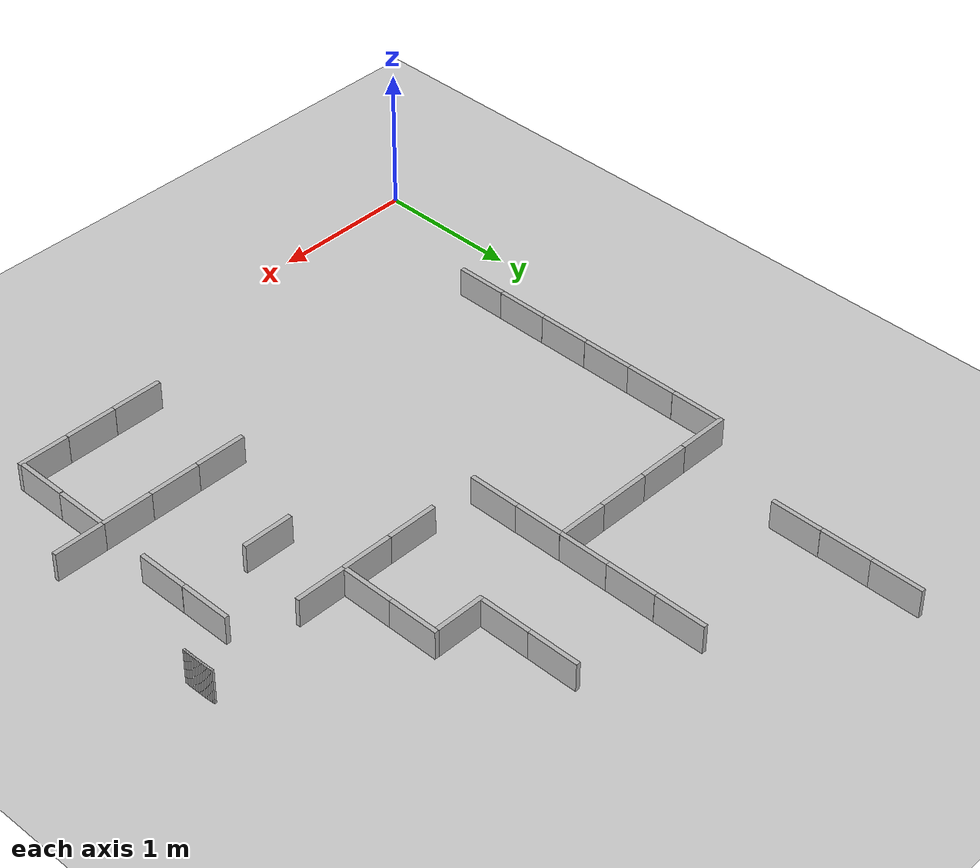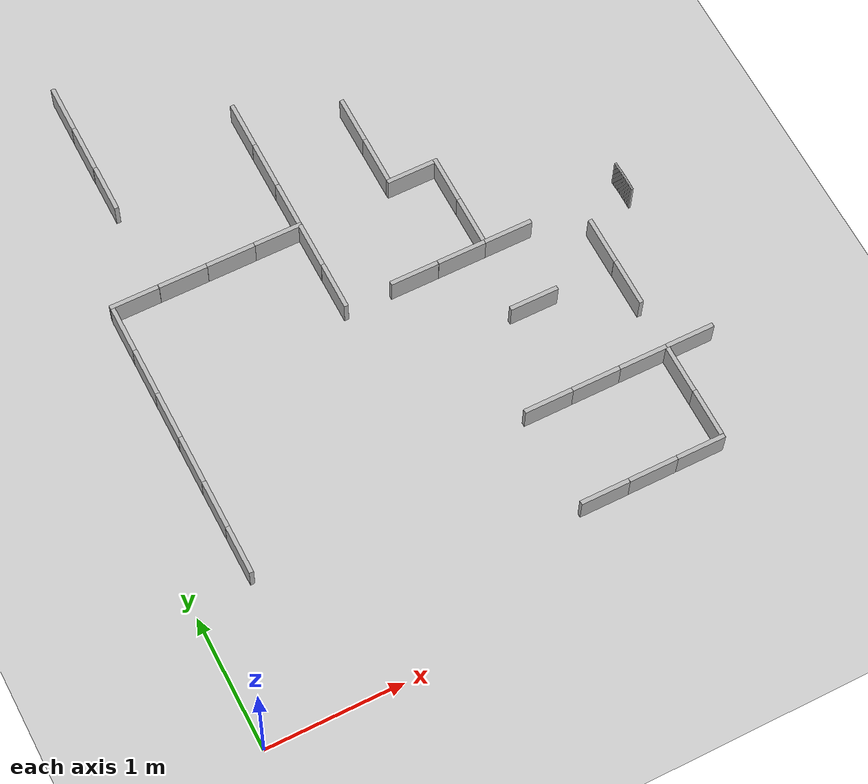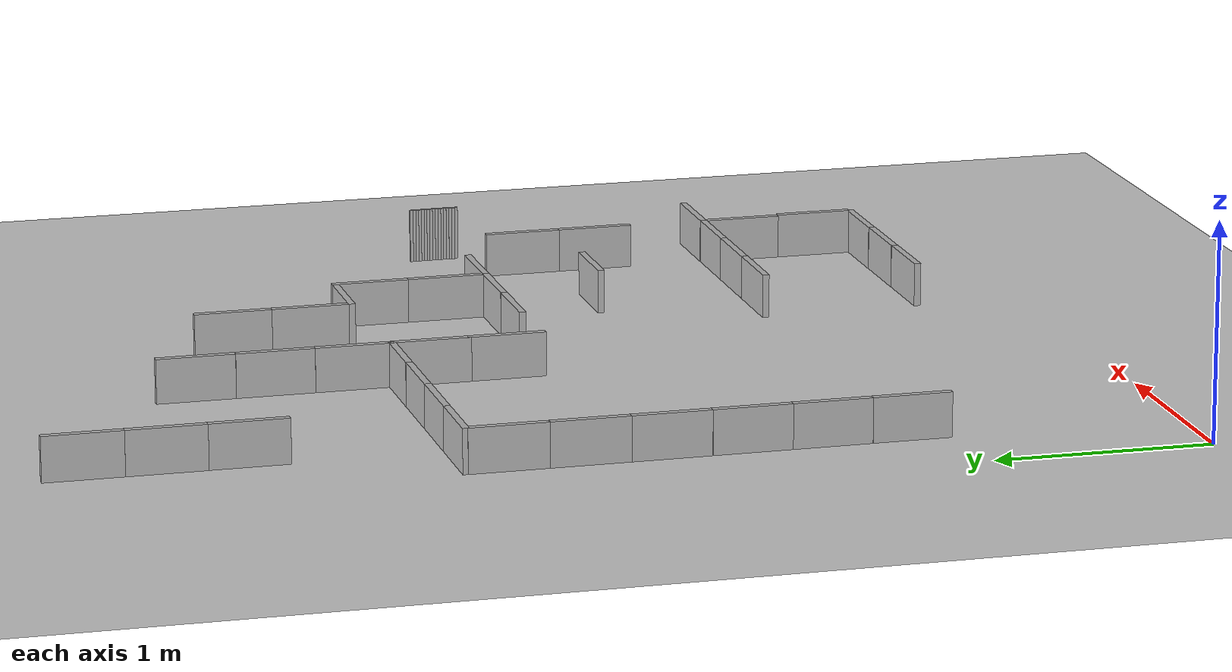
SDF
<sdf version="1.6">
 <world name="base">
  <model name="ground_plane">
   <static>1</static>
   <link name="link">
    <collision name="collision">
     <geometry><plane><normal>0 0 1</normal><size>100 100</size></plane></geometry>
     <surface>
      <contact><collide_bitmask>65535</collide_bitmask></contact>
      <friction><ode><mu>100</mu><mu2>50</mu2></ode></friction>
     </surface>
    </collision>
    <visual name="visual">
     <cast_shadows>0</cast_shadows>
     <geometry><plane><normal>0 0 1</normal><size>100 100</size></plane></geometry>
     <material>
      <script><uri>file://media/materials/scripts/gazebo.material</uri><name>Gazebo/Grey</name></script>
     </material>
    </visual>
   </link>
  </model>
  <model name="k404">
   <link name="280_link">
    <collision name="collision_280">
     <pose>3.99555 2.64912 0 0 -0 0</pose>
     <geometry><box><size>0.015 0.015 0.5</size></box></geometry>
    </collision>
    <visual name="visual_280">
     <pose>3.99555 2.64912 0 0 -0 0</pose>
     <geometry><box><size>0.015 0.015 0.5</size></box></geometry>
    </visual>
   </link>
   <link name="281_link">
    <collision name="collision_281">
     <pose>3.99634 2.63526 0 0 -0 0</pose>
     <geometry><box><size>0.015 0.015 0.5</size></box></geometry>
    </collision>
    <visual name="visual_281">
     <pose>3.99634 2.63526 0 0 -0 0</pose>
     <geometry><box><size>0.015 0.015 0.5</size></box></geometry>
    </visual>
   </link>
   <link name="282_link">
    <collision name="collision_282">
     <pose>3.99705 2.62139 0 0 -0 0</pose>
     <geometry><box><size>0.015 0.015 0.5</size></box></geometry>
    </collision>
    <visual name="visual_282">
     <pose>3.99705 2.62139 0 0 -0 0</pose>
     <geometry><box><size>0.015 0.015 0.5</size></box></geometry>
    </visual>
   </link>
   <link name="283_link">
    <collision name="collision_283">
     <pose>3.99769 2.60751 0 0 -0 0</pose>
     <geometry><box><size>0.015 0.015 0.5</size></box></geometry>
    </collision>
    <visual name="visual_283">
     <pose>3.99769 2.60751 0 0 -0 0</pose>
     <geometry><box><size>0.015 0.015 0.5</size></box></geometry>
    </visual>
   </link>
   <link name="284_link">
    <collision name="collision_284">
     <pose>3.99825 2.59364 0 0 -0 0</pose>
     <geometry><box><size>0.015 0.015 0.5</size></box></geometry>
    </collision>
    <visual name="visual_284">
     <pose>3.99825 2.59364 0 0 -0 0</pose>
     <geometry><box><size>0.015 0.015 0.5</size></box></geometry>
    </visual>
   </link>
   <link name="285_link">
    <collision name="collision_285">
     <pose>3.99873 2.57976 0 0 -0 0</pose>
     <geometry><box><size>0.015 0.015 0.5</size></box></geometry>
    </collision>
    <visual name="visual_285">
     <pose>3.99873 2.57976 0 0 -0 0</pose>
     <geometry><box><size>0.015 0.015 0.5</size></box></geometry>
    </visual>
   </link>
   <link name="286_link">
    <collision name="collision_286">
     <pose>3.99913 2.56587 0 0 -0 0</pose>
     <geometry><box><size>0.015 0.015 0.5</size></box></geometry>
    </collision>
    <visual name="visual_286">
     <pose>3.99913 2.56587 0 0 -0 0</pose>
     <geometry><box><size>0.015 0.015 0.5</size></box></geometry>
    </visual>
   </link>
   <link name="287_link">
    <collision name="collision_287">
     <pose>3.99946 2.55199 0 0 -0 0</pose>
     <geometry><box><size>0.015 0.015 0.5</size></box></geometry>
    </collision>
    <visual name="visual_287">
     <pose>3.99946 2.55199 0 0 -0 0</pose>
     <geometry><box><size>0.015 0.015 0.5</size></box></geometry>
    </visual>
   </link>
   <link name="288_link">
    <collision name="collision_288">
     <pose>3.99971 2.5381 0 0 -0 0</pose>
     <geometry><box><size>0.015 0.015 0.5</size></box></geometry>
    </collision>
    <visual name="visual_288">
     <pose>3.99971 2.5381 0 0 -0 0</pose>
     <geometry><box><size>0.015 0.015 0.5</size></box></geometry>
    </visual>
   </link>
   <link name="289_link">
    <collision name="collision_289">
     <pose>3.99988 2.52421 0 0 -0 0</pose>
     <geometry><box><size>0.015 0.015 0.5</size></box></geometry>
    </collision>
    <visual name="visual_289">
     <pose>3.99988 2.52421 0 0 -0 0</pose>
     <geometry><box><size>0.015 0.015 0.5</size></box></geometry>
    </visual>
   </link>
   <link name="290_link">
    <collision name="collision_290">
     <pose>3.99998 2.51032 0 0 -0 0</pose>
     <geometry><box><size>0.015 0.015 0.5</size></box></geometry>
    </collision>
    <visual name="visual_290">
     <pose>3.99998 2.51032 0 0 -0 0</pose>
     <geometry><box><size>0.015 0.015 0.5</size></box></geometry>
    </visual>
   </link>
   <link name="291_link">
    <collision name="collision_291">
     <pose>4 2.49643 0 0 -0 0</pose>
     <geometry><box><size>0.015 0.015 0.5</size></box></geometry>
    </collision>
    <visual name="visual_291">
     <pose>4 2.49643 0 0 -0 0</pose>
     <geometry><box><size>0.015 0.015 0.5</size></box></geometry>
    </visual>
   </link>
   <link name="292_link">
    <collision name="collision_292">
     <pose>3.99994 2.48255 0 0 -0 0</pose>
     <geometry><box><size>0.015 0.015 0.5</size></box></geometry>
    </collision>
    <visual name="visual_292">
     <pose>3.99994 2.48255 0 0 -0 0</pose>
     <geometry><box><size>0.015 0.015 0.5</size></box></geometry>
    </visual>
   </link>
   <link name="293_link">
    <collision name="collision_293">
     <pose>3.9998 2.46866 0 0 -0 0</pose>
     <geometry><box><size>0.015 0.015 0.5</size></box></geometry>
    </collision>
    <visual name="visual_293">
     <pose>3.9998 2.46866 0 0 -0 0</pose>
     <geometry><box><size>0.015 0.015 0.5</size></box></geometry>
    </visual>
   </link>
   <link name="294_link">
    <collision name="collision_294">
     <pose>3.99959 2.45477 0 0 -0 0</pose>
     <geometry><box><size>0.015 0.015 0.5</size></box></geometry>
    </collision>
    <visual name="visual_294">
     <pose>3.99959 2.45477 0 0 -0 0</pose>
     <geometry><box><size>0.015 0.015 0.5</size></box></geometry>
    </visual>
   </link>
   <link name="295_link">
    <collision name="collision_295">
     <pose>3.9993 2.44089 0 0 -0 0</pose>
     <geometry><box><size>0.015 0.015 0.5</size></box></geometry>
    </collision>
    <visual name="visual_295">
     <pose>3.9993 2.44089 0 0 -0 0</pose>
     <geometry><box><size>0.015 0.015 0.5</size></box></geometry>
    </visual>
   </link>
   <link name="296_link">
    <collision name="collision_296">
     <pose>3.99893 2.427 0 0 -0 0</pose>
     <geometry><box><size>0.015 0.015 0.5</size></box></geometry>
    </collision>
    <visual name="visual_296">
     <pose>3.99893 2.427 0 0 -0 0</pose>
     <geometry><box><size>0.015 0.015 0.5</size></box></geometry>
    </visual>
   </link>
   <static>1</static>
  </model>
  <model name="Placa1">
   <pose>2.732450 2.539440 0 0 0 1.57</pose>
   <static>1</static>
   <link name="link">
    <collision name="collision"><geometry><box><size>0.031694 0.360886 0.40006</size></box></geometry></collision>
    <visual name="visual"><geometry><box><size>0.031694 0.360886 0.40006</size></box></geometry></visual>
   </link>
  </model>
  <model name="Placa2">
   <pose>2.37015 2.53943 0 0 -0 1.57</pose>
   <static>1</static>
   <link name="link">
    <collision name="collision"><geometry><box><size>0.031694 0.360886 0.40006</size></box></geometry></collision>
    <visual name="visual"><geometry><box><size>0.031694 0.360886 0.40006</size></box></geometry></visual>
   </link>
  </model>
  <model name="Placa3">
   <pose>3.09221 2.53943 0 0 -0 1.57</pose>
   <static>1</static>
   <link name="link">
    <collision name="collision"><geometry><box><size>0.031694 0.360886 0.40006</size></box></geometry></collision>
    <visual name="visual"><geometry><box><size>0.031694 0.360886 0.40006</size></box></geometry></visual>
   </link>
  </model>
  <model name="Placa4">
   <pose>3.80692 1.2774 0 0 -0 1.57</pose>
   <static>1</static>
   <link name="link">
    <collision name="collision"><geometry><box><size>0.031694 0.360886 0.40006</size></box></geometry></collision>
    <visual name="visual"><geometry><box><size>0.031694 0.360886 0.40006</size></box></geometry></visual>
   </link>
  </model>
  <model name="Placa5">
   <pose>2.72547 1.27695 0 0 -0 1.57</pose>
   <static>1</static>
   <link name="link">
    <collision name="collision"><geometry><box><size>0.031694 0.360886 0.40006</size></box></geometry></collision>
    <visual name="visual"><geometry><box><size>0.031694 0.360886 0.40006</size></box></geometry></visual>
   </link>
  </model>
  <model name="Placa6">
   <pose>3.08648 1.27706 0 0 -0 1.57</pose>
   <static>1</static>
   <link name="link">
    <collision name="collision"><geometry><box><size>0.031694 0.360886 0.40006</size></box></geometry></collision>
    <visual name="visual"><geometry><box><size>0.031694 0.360886 0.40006</size></box></geometry></visual>
   </link>
  </model>
  <model name="Placa7">
   <pose>3.44758 1.27708 0 0 -0 1.57</pose>
   <static>1</static>
   <link name="link">
    <collision name="collision"><geometry><box><size>0.031694 0.360886 0.40006</size></box></geometry></collision>
    <visual name="visual"><geometry><box><size>0.031694 0.360886 0.40006</size></box></geometry></visual>
   </link>
  </model>
  <model name="Placa8">
   <pose>3.463822 0.526993 0 0 -0 1.57</pose>
   <static>1</static>
   <link name="link">
    <collision name="collision"><geometry><box><size>0.031694 0.360886 0.40006</size></box></geometry></collision>
    <visual name="visual"><geometry><box><size>0.031694 0.360886 0.40006</size></box></geometry></visual>
   </link>
  </model>
  <model name="Placa9">
   <pose>3.10234 0.526452 0 0 -0 1.57</pose>
   <static>1</static>
   <link name="link">
    <collision name="collision"><geometry><box><size>0.031694 0.360886 0.40006</size></box></geometry></collision>
    <visual name="visual"><geometry><box><size>0.031694 0.360886 0.40006</size></box></geometry></visual>
   </link>
  </model>
  <model name="Placa10">
   <pose>3.00567 2.00183 0 0 -0 1.57</pose>
   <static>1</static>
   <link name="link">
    <collision name="collision"><geometry><box><size>0.031694 0.360886 0.40006</size></box></geometry></collision>
    <visual name="visual"><geometry><box><size>0.031694 0.360886 0.40006</size></box></geometry></visual>
   </link>
  </model>
  <model name="Placa11">
   <pose>0.427226 1.59754 0 0 -0 0</pose>
   <static>1</static>
   <link name="link">
    <collision name="collision"><geometry><box><size>0.031694 0.360886 0.40006</size></box></geometry></collision>
    <visual name="visual"><geometry><box><size>0.031694 0.360886 0.40006</size></box></geometry></visual>
   </link>
  </model>
  <model name="Placa12">
   <pose>0.590901 3.23044 0 0 -0 1.57</pose>
   <static>1</static>
   <link name="link">
    <collision name="collision"><geometry><box><size>0.031694 0.360886 0.40006</size></box></geometry></collision>
    <visual name="visual"><geometry><box><size>0.031694 0.360886 0.40006</size></box></geometry></visual>
   </link>
  </model>
  <model name="Placa13">
   <pose>0.952624 3.23037 0 0 -0 1.57</pose>
   <static>1</static>
   <link name="link">
    <collision name="collision"><geometry><box><size>0.031694 0.360886 0.40006</size></box></geometry></collision>
    <visual name="visual"><geometry><box><size>0.031694 0.360886 0.40006</size></box></geometry></visual>
   </link>
  </model>
  <model name="Placa14">
   <pose>1.31389 3.23073 0 0 -0 1.57</pose>
   <static>1</static>
   <link name="link">
    <collision name="collision"><geometry><box><size>0.031694 0.360886 0.40006</size></box></geometry></collision>
    <visual name="visual"><geometry><box><size>0.031694 0.360886 0.40006</size></box></geometry></visual>
   </link>
  </model>
  <model name="Placa15">
   <pose>1.6744 3.23121 0 0 -0 1.57</pose>
   <static>1</static>
   <link name="link">
    <collision name="collision"><geometry><box><size>0.031694 0.360886 0.40006</size></box></geometry></collision>
    <visual name="visual"><geometry><box><size>0.031694 0.360886 0.40006</size></box></geometry></visual>
   </link>
  </model>
  <model name="Placa16">
   <pose>2.71226 3.26281 0 0 -0 1.57</pose>
   <static>1</static>
   <link name="link">
    <collision name="collision"><geometry><box><size>0.031694 0.360886 0.40006</size></box></geometry></collision>
    <visual name="visual"><geometry><box><size>0.031694 0.360886 0.40006</size></box></geometry></visual>
   </link>
  </model>
  <model name="Placa17">
   <pose>0.42662 1.95843 0 0 -0 0</pose>
   <static>1</static>
   <link name="link">
    <collision name="collision"><geometry><box><size>0.031694 0.360886 0.40006</size></box></geometry></collision>
    <visual name="visual"><geometry><box><size>0.031694 0.360886 0.40006</size></box></geometry></visual>
   </link>
  </model>
  <model name="Placa18">
   <pose>0.426106 2.32 0 0 -0 0</pose>
   <static>1</static>
   <link name="link">
    <collision name="collision"><geometry><box><size>0.031694 0.360886 0.40006</size></box></geometry></collision>
    <visual name="visual"><geometry><box><size>0.031694 0.360886 0.40006</size></box></geometry></visual>
   </link>
  </model>
  <model name="Placa19">
   <pose>0.425915 2.68095 0 0 -0 0</pose>
   <static>1</static>
   <link name="link">
    <collision name="collision"><geometry><box><size>0.031694 0.360886 0.40006</size></box></geometry></collision>
    <visual name="visual"><geometry><box><size>0.031694 0.360886 0.40006</size></box></geometry></visual>
   </link>
  </model>
  <model name="Placa20">
   <pose>0.425298 3.04244 0 0 -0 0</pose>
   <static>1</static>
   <link name="link">
    <collision name="collision"><geometry><box><size>0.031694 0.360886 0.40006</size></box></geometry></collision>
    <visual name="visual"><geometry><box><size>0.031694 0.360886 0.40006</size></box></geometry></visual>
   </link>
  </model>
  <model name="Placa21">
   <pose>0.427425 1.23641 0 0 -0 0</pose>
   <static>1</static>
   <link name="link">
    <collision name="collision"><geometry><box><size>0.031694 0.360886 0.40006</size></box></geometry></collision>
    <visual name="visual"><geometry><box><size>0.031694 0.360886 0.40006</size></box></geometry></visual>
   </link>
  </model>
  <model name="Placa22">
   <pose>1.8406 3.7661 0 0 -0 0</pose>
   <static>1</static>
   <link name="link">
    <collision name="collision"><geometry><box><size>0.031694 0.360886 0.40006</size></box></geometry></collision>
    <visual name="visual"><geometry><box><size>0.031694 0.360886 0.40006</size></box></geometry></visual>
   </link>
  </model>
  <model name="Placa23">
   <pose>1.84017 4.12777 0 0 -0 0</pose>
   <static>1</static>
   <link name="link">
    <collision name="collision"><geometry><box><size>0.031694 0.360886 0.40006</size></box></geometry></collision>
    <visual name="visual"><geometry><box><size>0.031694 0.360886 0.40006</size></box></geometry></visual>
   </link>
  </model>
  <model name="Placa24">
   <pose>2.90911 2.736 0 0 -0 0</pose>
   <static>1</static>
   <link name="link">
    <collision name="collision"><geometry><box><size>0.031694 0.360886 0.40006</size></box></geometry></collision>
    <visual name="visual"><geometry><box><size>0.031694 0.360886 0.40006</size></box></geometry></visual>
   </link>
  </model>
  <model name="Placa25">
   <pose>2.90837 3.09687 0 0 -0 0</pose>
   <static>1</static>
   <link name="link">
    <collision name="collision"><geometry><box><size>0.031694 0.360886 0.40006</size></box></geometry></collision>
    <visual name="visual"><geometry><box><size>0.031694 0.360886 0.40006</size></box></geometry></visual>
   </link>
  </model>
  <model name="Placa26">
   <pose>3.63866 2.18269 0 0 -0 0</pose>
   <static>1</static>
   <link name="link">
    <collision name="collision"><geometry><box><size>0.031694 0.360886 0.40006</size></box></geometry></collision>
    <visual name="visual"><geometry><box><size>0.031694 0.360886 0.40006</size></box></geometry></visual>
   </link>
  </model>
  <model name="Placa27">
   <pose>3.64011 1.82321 0 0 -0 0</pose>
   <static>1</static>
   <link name="link">
    <collision name="collision"><geometry><box><size>0.031694 0.360886 0.40006</size></box></geometry></collision>
    <visual name="visual"><geometry><box><size>0.031694 0.360886 0.40006</size></box></geometry></visual>
   </link>
  </model>
  <model name="Placa28">
   <pose>3.62804 1.08185 0 0 -0 0</pose>
   <static>1</static>
   <link name="link">
    <collision name="collision"><geometry><box><size>0.031694 0.360886 0.40006</size></box></geometry></collision>
    <visual name="visual"><geometry><box><size>0.031694 0.360886 0.40006</size></box></geometry></visual>
   </link>
  </model>
  <model name="Placa29">
   <pose>3.62826 0.721652 0.005089 0 -0 0</pose>
   <static>1</static>
   <link name="link">
    <collision name="collision"><geometry><box><size>0.031694 0.360886 0.40006</size></box></geometry></collision>
    <visual name="visual"><geometry><box><size>0.031694 0.360886 0.40006</size></box></geometry></visual>
   </link>
  </model>
  <model name="Placa30">
   <pose>0.77105 4.45754 0 0 -0 0</pose>
   <static>1</static>
   <link name="link">
    <collision name="collision"><geometry><box><size>0.031694 0.360886 0.40006</size></box></geometry></collision>
    <visual name="visual"><geometry><box><size>0.031694 0.360886 0.40006</size></box></geometry></visual>
   </link>
  </model>
  <model name="Placa31">
   <pose>0.772762 4.09807 0 0 -0 0</pose>
   <static>1</static>
   <link name="link">
    <collision name="collision"><geometry><box><size>0.031694 0.360886 0.40006</size></box></geometry></collision>
    <visual name="visual"><geometry><box><size>0.031694 0.360886 0.40006</size></box></geometry></visual>
   </link>
  </model>
  <model name="Placa32">
   <pose>2.54622 3.45817 0 0 -0 0</pose>
   <static>1</static>
   <link name="link">
    <collision name="collision"><geometry><box><size>0.031694 0.360886 0.40006</size></box></geometry></collision>
    <visual name="visual"><geometry><box><size>0.031694 0.360886 0.40006</size></box></geometry></visual>
   </link>
  </model>
  <model name="Placa33">
   <pose>2.54547 3.81898 0 0 -0 0</pose>
   <static>1</static>
   <link name="link">
    <collision name="collision"><geometry><box><size>0.031694 0.360886 0.40006</size></box></geometry></collision>
    <visual name="visual"><geometry><box><size>0.031694 0.360886 0.40006</size></box></geometry></visual>
   </link>
  </model>
  <model name="Placa34">
   <pose>0.770965 4.81852 0 0 -0 0</pose>
   <static>1</static>
   <link name="link">
    <collision name="collision"><geometry><box><size>0.031694 0.360886 0.40006</size></box></geometry></collision>
    <visual name="visual"><geometry><box><size>0.031694 0.360886 0.40006</size></box></geometry></visual>
   </link>
  </model>
  <model name="Placa35">
   <pose>1.84115 3.40485 0 0 -0 0</pose>
   <static>1</static>
   <link name="link">
    <collision name="collision"><geometry><box><size>0.031694 0.360886 0.40006</size></box></geometry></collision>
    <visual name="visual"><geometry><box><size>0.031694 0.360886 0.40006</size></box></geometry></visual>
   </link>
  </model>
  <model name="Placa36">
   <pose>1.8425 3.04727 0 0 -0 0</pose>
   <static>1</static>
   <link name="link">
    <collision name="collision"><geometry><box><size>0.031694 0.360886 0.40006</size></box></geometry></collision>
    <visual name="visual"><geometry><box><size>0.031694 0.360886 0.40006</size></box></geometry></visual>
   </link>
  </model>
  <model name="Placa37">
   <pose>1.84372 2.70004 0 0 -0 0</pose>
   <static>1</static>
   <link name="link">
    <collision name="collision"><geometry><box><size>0.031694 0.360886 0.40006</size></box></geometry></collision>
    <visual name="visual"><geometry><box><size>0.031694 0.360886 0.40006</size></box></geometry></visual>
   </link>
  </model>
  <model name="Placa38">
   <pose>2.74067 0.52593 0 0 -0 1.57</pose>
   <static>1</static>
   <link name="link">
    <collision name="collision"><geometry><box><size>0.031694 0.360886 0.40006</size></box></geometry></collision>
    <visual name="visual"><geometry><box><size>0.031694 0.360886 0.40006</size></box></geometry></visual>
   </link>
  </model>
 </world>
</sdf>
